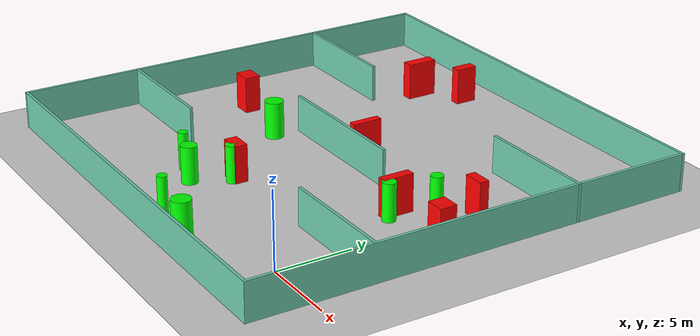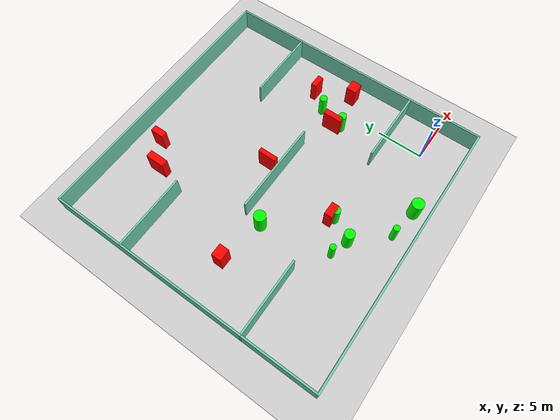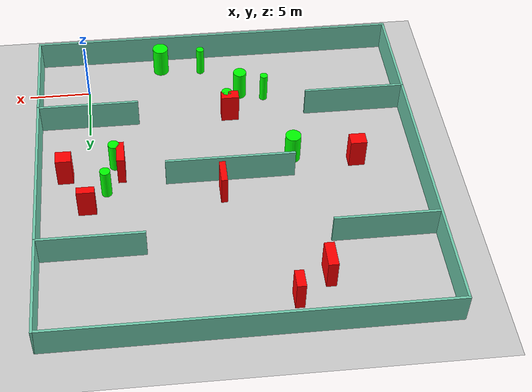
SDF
<sdf version="1.7">
 <world name="default">
  <light name="sun" type="directional">
   <pose>0 0 10 0 -0 0</pose>
   <diffuse>0.8 0.8 0.8 1</diffuse>
   <specular>0.2 0.2 0.2 1</specular>
   <attenuation>
    <range>1000</range>
    <constant>0.9</constant>
    <linear>0.01</linear>
    <quadratic>0.001</quadratic>
   </attenuation>
   <direction>-0.5 0.1 -0.9</direction>
   <spot><inner_angle>0</inner_angle><outer_angle>0</outer_angle><falloff>0</falloff></spot>
  </light>
  <model name="ground_plane">
   <static>1</static>
   <link name="link">
    <collision name="collision">
     <geometry><plane><normal>0 0 1</normal><size>100 100</size></plane></geometry>
     <surface>
      <contact><collide_bitmask>65535</collide_bitmask></contact>
      <friction><ode><mu>100</mu><mu2>50</mu2></ode></friction>
     </surface>
    </collision>
    <visual name="visual">
     <cast_shadows>0</cast_shadows>
     <geometry><plane><normal>0 0 1</normal><size>100 100</size></plane></geometry>
     <material>
      <script><uri>file://media/materials/scripts/gazebo.material</uri><name>Gazebo/Grey</name></script>
     </material>
    </visual>
   </link>
  </model>
  <gravity>0 0 -9.8</gravity>
  <magnetic_field>6e-06 2.3e-05 -4.2e-05</magnetic_field>
  <atmosphere type="adiabatic"/>
  <physics type="ode">
   <max_step_size>0.001</max_step_size>
   <real_time_factor>1</real_time_factor>
   <real_time_update_rate>1000</real_time_update_rate>
  </physics>
  <scene><ambient>0.4 0.4 0.4 1</ambient><background>0.7 0.7 0.7 1</background><shadows>1</shadows></scene>
  <spherical_coordinates>
   <surface_model>EARTH_WGS84</surface_model>
   <latitude_deg>0</latitude_deg>
   <longitude_deg>0</longitude_deg>
   <elevation>0</elevation>
   <heading_deg>0</heading_deg>
  </spherical_coordinates>
  <model name="my_base_walls">
   <link name="Wall_10">
    <collision name="Wall_10_Collision">
     <geometry><box><size>8.2 0.2 2.5</size></box></geometry>
     <pose>0 0 1.25 0 -0 0</pose>
    </collision>
    <visual name="Wall_10_Visual">
     <pose>0 0 1.25 0 -0 0</pose>
     <geometry><box><size>8.2 0.2 2.5</size></box></geometry>
     <material>
      <script><uri>file://media/materials/scripts/gazebo.material</uri><name>Gazebo/Grey</name></script>
      <ambient>0.435294 0.796078 0.67451 1</ambient>
     </material>
     <meta><layer>0</layer></meta>
    </visual>
    <pose>-11 -7 0 0 -0 0</pose>
   </link>
   <link name="Wall_12">
    <collision name="Wall_12_Collision">
     <geometry><box><size>8.2 0.2 2.5</size></box></geometry>
     <pose>0 0 1.25 0 -0 0</pose>
    </collision>
    <visual name="Wall_12_Visual">
     <pose>0 0 1.25 0 -0 0</pose>
     <geometry><box><size>8.2 0.2 2.5</size></box></geometry>
     <material>
      <script><uri>file://media/materials/scripts/gazebo.material</uri><name>Gazebo/Grey</name></script>
      <ambient>0.435294 0.796078 0.67451 1</ambient>
     </material>
     <meta><layer>0</layer></meta>
    </visual>
    <pose>-11 7 0 0 -0 0</pose>
   </link>
   <link name="Wall_14">
    <collision name="Wall_14_Collision">
     <geometry><box><size>8.2 0.2 2.5</size></box></geometry>
     <pose>0 0 1.25 0 -0 0</pose>
    </collision>
    <visual name="Wall_14_Visual">
     <pose>0 0 1.25 0 -0 0</pose>
     <geometry><box><size>8.2 0.2 2.5</size></box></geometry>
     <material>
      <script><uri>file://media/materials/scripts/gazebo.material</uri><name>Gazebo/Grey</name></script>
      <ambient>0.435294 0.796078 0.67451 1</ambient>
     </material>
     <meta><layer>0</layer></meta>
    </visual>
    <pose>11 7 0 0 -0 3.14159</pose>
   </link>
   <link name="Wall_16">
    <collision name="Wall_16_Collision">
     <geometry><box><size>10.2 0.2 2.5</size></box></geometry>
     <pose>0 0 1.25 0 -0 0</pose>
    </collision>
    <visual name="Wall_16_Visual">
     <pose>0 0 1.25 0 -0 0</pose>
     <geometry><box><size>10.2 0.2 2.5</size></box></geometry>
     <material>
      <script><uri>file://media/materials/scripts/gazebo.material</uri><name>Gazebo/Grey</name></script>
      <ambient>0.435294 0.796078 0.67451 1</ambient>
     </material>
     <meta><layer>0</layer></meta>
    </visual>
    <pose>0 0 0 0 -0 3.14159</pose>
   </link>
   <link name="Wall_2">
    <collision name="Wall_2_Collision">
     <geometry><box><size>30.2 0.2 2.5</size></box></geometry>
     <pose>0 0 1.25 0 -0 0</pose>
    </collision>
    <visual name="Wall_2_Visual">
     <pose>0 0 1.25 0 -0 0</pose>
     <geometry><box><size>30.2 0.2 2.5</size></box></geometry>
     <material>
      <script><uri>file://media/materials/scripts/gazebo.material</uri><name>Gazebo/Grey</name></script>
      <ambient>0.435294 0.796078 0.67451 1</ambient>
     </material>
     <meta><layer>0</layer></meta>
    </visual>
    <pose>0 -15 0 0 -0 3.14159</pose>
   </link>
   <link name="Wall_3">
    <collision name="Wall_3_Collision">
     <geometry><box><size>30.2 0.2 2.5</size></box></geometry>
     <pose>0 0 1.25 0 -0 0</pose>
    </collision>
    <visual name="Wall_3_Visual">
     <pose>0 0 1.25 0 -0 0</pose>
     <geometry><box><size>30.2 0.2 2.5</size></box></geometry>
     <material>
      <script><uri>file://media/materials/scripts/gazebo.material</uri><name>Gazebo/Grey</name></script>
      <ambient>0.435294 0.796078 0.67451 1</ambient>
     </material>
     <meta><layer>0</layer></meta>
    </visual>
    <pose>-15 0 0 0 -0 1.5708</pose>
   </link>
   <link name="Wall_4">
    <collision name="Wall_4_Collision">
     <geometry><box><size>30.2 0.2 2.5</size></box></geometry>
     <pose>0 0 1.25 0 -0 0</pose>
    </collision>
    <visual name="Wall_4_Visual">
     <pose>0 0 1.25 0 -0 0</pose>
     <geometry><box><size>30.2 0.2 2.5</size></box></geometry>
     <material>
      <script><uri>file://media/materials/scripts/gazebo.material</uri><name>Gazebo/Grey</name></script>
      <ambient>0.435294 0.796078 0.67451 1</ambient>
     </material>
     <meta><layer>0</layer></meta>
    </visual>
    <pose>0 15 0 0 -0 0</pose>
   </link>
   <link name="Wall_6">
    <collision name="Wall_6_Collision">
     <geometry><box><size>30.2 0.2 2.5</size></box></geometry>
     <pose>0 0 1.25 0 -0 0</pose>
    </collision>
    <visual name="Wall_6_Visual">
     <pose>0 0 1.25 0 -0 0</pose>
     <geometry><box><size>30.2 0.2 2.5</size></box></geometry>
     <material>
      <script><uri>file://media/materials/scripts/gazebo.material</uri><name>Gazebo/Grey</name></script>
      <ambient>0.435294 0.796078 0.67451 1</ambient>
     </material>
     <meta><layer>0</layer></meta>
    </visual>
    <pose>15 0 0 0 -0 1.5708</pose>
   </link>
   <link name="Wall_8">
    <collision name="Wall_8_Collision">
     <geometry><box><size>8.2 0.2 2.5</size></box></geometry>
     <pose>0 0 1.25 0 -0 0</pose>
    </collision>
    <visual name="Wall_8_Visual">
     <pose>0 0 1.25 0 -0 0</pose>
     <geometry><box><size>8.2 0.2 2.5</size></box></geometry>
     <material>
      <script><uri>file://media/materials/scripts/gazebo.material</uri><name>Gazebo/Grey</name></script>
      <ambient>0.435294 0.796078 0.67451 1</ambient>
     </material>
     <meta><layer>0</layer></meta>
    </visual>
    <pose>11 -7 0 0 -0 3.14159</pose>
   </link>
   <static>1</static>
   <pose>-11 11 0 0 -0 0</pose>
  </model>
  <model name="cylinder1">
   <static>1</static>
   <link name="link">
    <inertial>
     <mass>1</mass>
     <inertia><ixx>0.5</ixx><ixy>0</ixy><ixz>0</ixz><iyy>0.5</iyy><iyz>0</iyz><izz>1</izz></inertia>
    </inertial>
    <collision name="collision">
     <geometry><cylinder><radius>0.6261374623092018</radius><length>2.5</length></cylinder></geometry>
    </collision>
    <visual name="visual">
     <geometry><cylinder><radius>0.6261374623092018</radius><length>2.5</length></cylinder></geometry>
     <material>
      <ambient>0 1 0 1</ambient>
      <diffuse>0 1 0 1</diffuse>
      <specular>0.1 0.1 0.1 1</specular>
      <emissive>0 0 0 0</emissive>
     </material>
    </visual>
   </link>
   <pose>-16.18242003461102 9.145735143859303 1.25 0 0 0</pose>
  </model>
  <model name="cylinder2">
   <static>1</static>
   <link name="link">
    <inertial>
     <mass>1</mass>
     <inertia><ixx>0.5</ixx><ixy>0</ixy><ixz>0</ixz><iyy>0.5</iyy><iyz>0</iyz><izz>1</izz></inertia>
    </inertial>
    <collision name="collision">
     <geometry><cylinder><radius>0.3255940586442754</radius><length>2.5</length></cylinder></geometry>
    </collision>
    <visual name="visual">
     <geometry><cylinder><radius>0.3255940586442754</radius><length>2.5</length></cylinder></geometry>
     <material>
      <ambient>0 1 0 1</ambient>
      <diffuse>0 1 0 1</diffuse>
      <specular>0.1 0.1 0.1 1</specular>
      <emissive>0 0 0 0</emissive>
     </material>
    </visual>
   </link>
   <pose>-9.692621471531094 -2.0647790132246797 1.25 0 0 0</pose>
  </model>
  <model name="cylinder3">
   <static>1</static>
   <link name="link">
    <inertial>
     <mass>1</mass>
     <inertia><ixx>0.5</ixx><ixy>0</ixy><ixz>0</ixz><iyy>0.5</iyy><iyz>0</iyz><izz>1</izz></inertia>
    </inertial>
    <collision name="collision">
     <geometry><cylinder><radius>0.3187390063149909</radius><length>2.5</length></cylinder></geometry>
    </collision>
    <visual name="visual">
     <geometry><cylinder><radius>0.3187390063149909</radius><length>2.5</length></cylinder></geometry>
     <material>
      <ambient>0 1 0 1</ambient>
      <diffuse>0 1 0 1</diffuse>
      <specular>0.1 0.1 0.1 1</specular>
      <emissive>0 0 0 0</emissive>
     </material>
    </visual>
   </link>
   <pose>-14.739252481213338 1.8138949840367982 1.25 0 0 0</pose>
  </model>
  <model name="cylinder4">
   <static>1</static>
   <link name="link">
    <inertial>
     <mass>1</mass>
     <inertia><ixx>0.5</ixx><ixy>0</ixy><ixz>0</ixz><iyy>0.5</iyy><iyz>0</iyz><izz>1</izz></inertia>
    </inertial>
    <collision name="collision">
     <geometry><cylinder><radius>0.4097721650934678</radius><length>2.5</length></cylinder></geometry>
    </collision>
    <visual name="visual">
     <geometry><cylinder><radius>0.4097721650934678</radius><length>2.5</length></cylinder></geometry>
     <material>
      <ambient>0 1 0 1</ambient>
      <diffuse>0 1 0 1</diffuse>
      <specular>0.1 0.1 0.1 1</specular>
      <emissive>0 0 0 0</emissive>
     </material>
    </visual>
   </link>
   <pose>-1.2386795832141466 11.645158176202104 1.25 0 0 0</pose>
  </model>
  <model name="cylinder5">
   <static>1</static>
   <link name="link">
    <inertial>
     <mass>1</mass>
     <inertia><ixx>0.5</ixx><ixy>0</ixy><ixz>0</ixz><iyy>0.5</iyy><iyz>0</iyz><izz>1</izz></inertia>
    </inertial>
    <collision name="collision">
     <geometry><cylinder><radius>0.44237419884652573</radius><length>2.5</length></cylinder></geometry>
    </collision>
    <visual name="visual">
     <geometry><cylinder><radius>0.44237419884652573</radius><length>2.5</length></cylinder></geometry>
     <material>
      <ambient>0 1 0 1</ambient>
      <diffuse>0 1 0 1</diffuse>
      <specular>0.1 0.1 0.1 1</specular>
      <emissive>0 0 0 0</emissive>
     </material>
    </visual>
   </link>
   <pose>-1.9726484443531618 8.791256647802784 1.25 0 0 0</pose>
  </model>
  <model name="cylinder6">
   <static>1</static>
   <link name="link">
    <inertial>
     <mass>1</mass>
     <inertia><ixx>0.5</ixx><ixy>0</ixy><ixz>0</ixz><iyy>0.5</iyy><iyz>0</iyz><izz>1</izz></inertia>
    </inertial>
    <collision name="collision">
     <geometry><cylinder><radius>0.5345606107220927</radius><length>2.5</length></cylinder></geometry>
    </collision>
    <visual name="visual">
     <geometry><cylinder><radius>0.5345606107220927</radius><length>2.5</length></cylinder></geometry>
     <material>
      <ambient>0 1 0 1</ambient>
      <diffuse>0 1 0 1</diffuse>
      <specular>0.1 0.1 0.1 1</specular>
      <emissive>0 0 0 0</emissive>
     </material>
    </visual>
   </link>
   <pose>-12.764618462090715 1.2270459122547868 1.25 0 0 0</pose>
  </model>
  <model name="cylinder7">
   <static>1</static>
   <link name="link">
    <inertial>
     <mass>1</mass>
     <inertia><ixx>0.5</ixx><ixy>0</ixy><ixz>0</ixz><iyy>0.5</iyy><iyz>0</iyz><izz>1</izz></inertia>
    </inertial>
    <collision name="collision">
     <geometry><cylinder><radius>0.41779689111337825</radius><length>2.5</length></cylinder></geometry>
    </collision>
    <visual name="visual">
     <geometry><cylinder><radius>0.41779689111337825</radius><length>2.5</length></cylinder></geometry>
     <material>
      <ambient>0 1 0 1</ambient>
      <diffuse>0 1 0 1</diffuse>
      <specular>0.1 0.1 0.1 1</specular>
      <emissive>0 0 0 0</emissive>
     </material>
    </visual>
   </link>
   <pose>-11.449393797273133 3.5088985577145912 1.25 0 0 0</pose>
  </model>
  <model name="cylinder8">
   <static>1</static>
   <link name="link">
    <inertial>
     <mass>1</mass>
     <inertia><ixx>0.5</ixx><ixy>0</ixy><ixz>0</ixz><iyy>0.5</iyy><iyz>0</iyz><izz>1</izz></inertia>
    </inertial>
    <collision name="collision">
     <geometry><cylinder><radius>0.6359253064575596</radius><length>2.5</length></cylinder></geometry>
    </collision>
    <visual name="visual">
     <geometry><cylinder><radius>0.6359253064575596</radius><length>2.5</length></cylinder></geometry>
     <material>
      <ambient>0 1 0 1</ambient>
      <diffuse>0 1 0 1</diffuse>
      <specular>0.1 0.1 0.1 1</specular>
      <emissive>0 0 0 0</emissive>
     </material>
    </visual>
   </link>
   <pose>-6.290156704604168 -2.503400974201551 1.25 0 0 0</pose>
  </model>
  <model name="box1">
   <static>1</static>
   <link name="link">
    <inertial>
     <mass>1</mass>
     <inertia><ixx>0.083</ixx><ixy>0</ixy><ixz>0</ixz><iyy>0.083</iyy><iyz>0</iyz><izz>0.083</izz></inertia>
    </inertial>
    <collision name="collision">
     <geometry><box><size>1.396401269206245 0.6231916345249796 2.5</size></box></geometry>
    </collision>
    <visual name="visual">
     <geometry><box><size>1.396401269206245 0.6231916345249796 2.5</size></box></geometry>
     <material>
      <ambient>1 0 0 1</ambient>
      <diffuse>1 0 0 1</diffuse>
      <specular>0.1 0.1 0.1 1</specular>
      <emissive>0 0 0 0</emissive>
     </material>
    </visual>
    <sensor name="my_contact" type="contact">
     <contact><collision>box_collision</collision><topic>__default_topic__</topic></contact>
    </sensor>
   </link>
   <pose>0.28279999330661454 13.46396488048271 1.25 0 0 0</pose>
  </model>
  <model name="box2">
   <static>1</static>
   <link name="link">
    <inertial>
     <mass>1</mass>
     <inertia><ixx>0.083</ixx><ixy>0</ixy><ixz>0</ixz><iyy>0.083</iyy><iyz>0</iyz><izz>0.083</izz></inertia>
    </inertial>
    <collision name="collision">
     <geometry><box><size>1.2924860589401326 1.0702642410391037 2.5</size></box></geometry>
    </collision>
    <visual name="visual">
     <geometry><box><size>1.2924860589401326 1.0702642410391037 2.5</size></box></geometry>
     <material>
      <ambient>1 0 0 1</ambient>
      <diffuse>1 0 0 1</diffuse>
      <specular>0.1 0.1 0.1 1</specular>
      <emissive>0 0 0 0</emissive>
     </material>
    </visual>
    <sensor name="my_contact" type="contact">
     <contact><collision>box_collision</collision><topic>__default_topic__</topic></contact>
    </sensor>
   </link>
   <pose>-21.20472596527247 9.96039393428225 1.25 0 0 0</pose>
  </model>
  <model name="box3">
   <static>1</static>
   <link name="link">
    <inertial>
     <mass>1</mass>
     <inertia><ixx>0.083</ixx><ixy>0</ixy><ixz>0</ixz><iyy>0.083</iyy><iyz>0</iyz><izz>0.083</izz></inertia>
    </inertial>
    <collision name="collision">
     <geometry><box><size>1.2370426282245124 1.1149884165370678 2.5</size></box></geometry>
    </collision>
    <visual name="visual">
     <geometry><box><size>1.2370426282245124 1.1149884165370678 2.5</size></box></geometry>
     <material>
      <ambient>1 0 0 1</ambient>
      <diffuse>1 0 0 1</diffuse>
      <specular>0.1 0.1 0.1 1</specular>
      <emissive>0 0 0 0</emissive>
     </material>
    </visual>
    <sensor name="my_contact" type="contact">
     <contact><collision>box_collision</collision><topic>__default_topic__</topic></contact>
    </sensor>
   </link>
   <pose>1.9642563411125913 9.794304283211101 1.25 0 0 0</pose>
  </model>
  <model name="box4">
   <static>1</static>
   <link name="link">
    <inertial>
     <mass>1</mass>
     <inertia><ixx>0.083</ixx><ixy>0</ixy><ixz>0</ixz><iyy>0.083</iyy><iyz>0</iyz><izz>0.083</izz></inertia>
    </inertial>
    <collision name="collision">
     <geometry><box><size>0.6194279494492871 2.037964334441507 2.5</size></box></geometry>
    </collision>
    <visual name="visual">
     <geometry><box><size>0.6194279494492871 2.037964334441507 2.5</size></box></geometry>
     <material>
      <ambient>1 0 0 1</ambient>
      <diffuse>1 0 0 1</diffuse>
      <specular>0.1 0.1 0.1 1</specular>
      <emissive>0 0 0 0</emissive>
     </material>
    </visual>
    <sensor name="my_contact" type="contact">
     <contact><collision>box_collision</collision><topic>__default_topic__</topic></contact>
    </sensor>
   </link>
   <pose>-2.469393822782063 9.602772474950818 1.25 0 0 0</pose>
  </model>
  <model name="box5">
   <static>1</static>
   <link name="link">
    <inertial>
     <mass>1</mass>
     <inertia><ixx>0.083</ixx><ixy>0</ixy><ixz>0</ixz><iyy>0.083</iyy><iyz>0</iyz><izz>0.083</izz></inertia>
    </inertial>
    <collision name="collision">
     <geometry><box><size>1.425504637238068 0.8471147368109149 2.5</size></box></geometry>
    </collision>
    <visual name="visual">
     <geometry><box><size>1.425504637238068 0.8471147368109149 2.5</size></box></geometry>
     <material>
      <ambient>1 0 0 1</ambient>
      <diffuse>1 0 0 1</diffuse>
      <specular>0.1 0.1 0.1 1</specular>
      <emissive>0 0 0 0</emissive>
     </material>
    </visual>
    <sensor name="my_contact" type="contact">
     <contact><collision>box_collision</collision><topic>__default_topic__</topic></contact>
    </sensor>
   </link>
   <pose>-11.669282449404822 3.897351960693488 1.25 0 0 0</pose>
  </model>
  <model name="box6">
   <static>1</static>
   <link name="link">
    <inertial>
     <mass>1</mass>
     <inertia><ixx>0.083</ixx><ixy>0</ixy><ixz>0</ixz><iyy>0.083</iyy><iyz>0</iyz><izz>0.083</izz></inertia>
    </inertial>
    <collision name="collision">
     <geometry><box><size>0.6969666022037883 1.4504865834639005 2.5</size></box></geometry>
    </collision>
    <visual name="visual">
     <geometry><box><size>0.6969666022037883 1.4504865834639005 2.5</size></box></geometry>
     <material>
      <ambient>1 0 0 1</ambient>
      <diffuse>1 0 0 1</diffuse>
      <specular>0.1 0.1 0.1 1</specular>
      <emissive>0 0 0 0</emissive>
     </material>
    </visual>
    <sensor name="my_contact" type="contact">
     <contact><collision>box_collision</collision><topic>__default_topic__</topic></contact>
    </sensor>
   </link>
   <pose>-14.641391012671388 23.269716223506677 1.25 0 0 0</pose>
  </model>
  <model name="box7">
   <static>1</static>
   <link name="link">
    <inertial>
     <mass>1</mass>
     <inertia><ixx>0.083</ixx><ixy>0</ixy><ixz>0</ixz><iyy>0.083</iyy><iyz>0</iyz><izz>0.083</izz></inertia>
    </inertial>
    <collision name="collision">
     <geometry><box><size>0.5043799197995582 2.01401524653331 2.5</size></box></geometry>
    </collision>
    <visual name="visual">
     <geometry><box><size>0.5043799197995582 2.01401524653331 2.5</size></box></geometry>
     <material>
      <ambient>1 0 0 1</ambient>
      <diffuse>1 0 0 1</diffuse>
      <specular>0.1 0.1 0.1 1</specular>
      <emissive>0 0 0 0</emissive>
     </material>
    </visual>
    <sensor name="my_contact" type="contact">
     <contact><collision>box_collision</collision><topic>__default_topic__</topic></contact>
    </sensor>
   </link>
   <pose>-10.288897030144893 12.464432451016329 1.25 0 0 0</pose>
  </model>
  <model name="box8">
   <static>1</static>
   <link name="link">
    <inertial>
     <mass>1</mass>
     <inertia><ixx>0.083</ixx><ixy>0</ixy><ixz>0</ixz><iyy>0.083</iyy><iyz>0</iyz><izz>0.083</izz></inertia>
    </inertial>
    <collision name="collision">
     <geometry><box><size>0.7703194130420956 2.070245909850617 2.5</size></box></geometry>
    </collision>
    <visual name="visual">
     <geometry><box><size>0.7703194130420956 2.070245909850617 2.5</size></box></geometry>
     <material>
      <ambient>1 0 0 1</ambient>
      <diffuse>1 0 0 1</diffuse>
      <specular>0.1 0.1 0.1 1</specular>
      <emissive>0 0 0 0</emissive>
     </material>
    </visual>
    <sensor name="my_contact" type="contact">
     <contact><collision>box_collision</collision><topic>__default_topic__</topic></contact>
    </sensor>
   </link>
   <pose>-17.171083310964082 21.28932402387378 1.25 0 0 0</pose>
  </model>
 </world>
</sdf>
